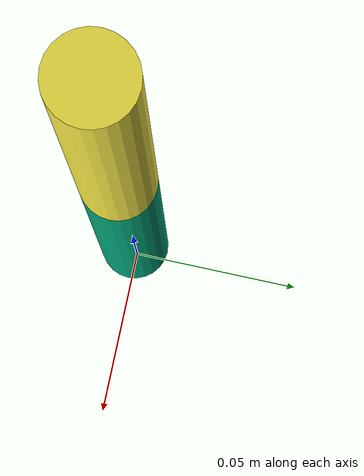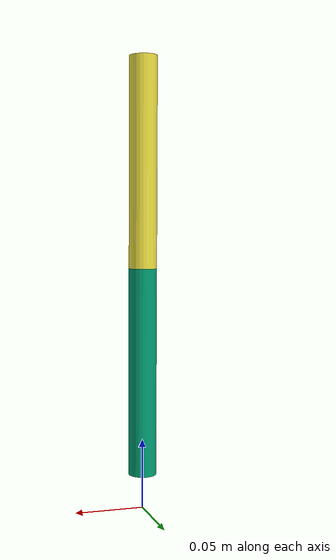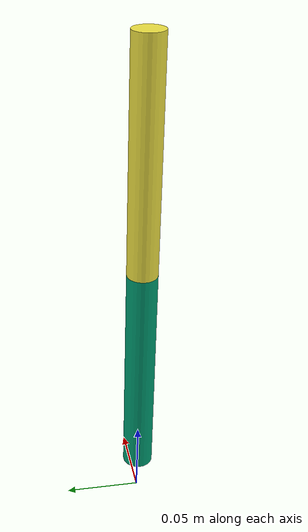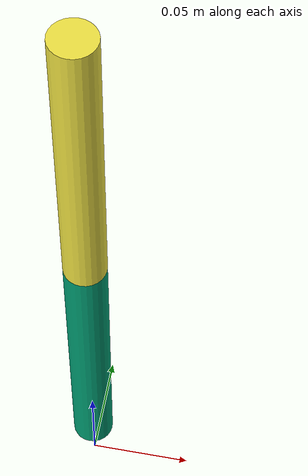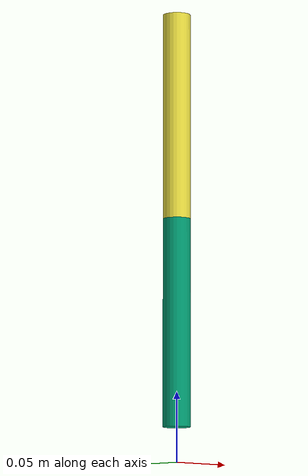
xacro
<?xml version="1.0"?>
<robot name="4dof_arm">

  <!-- Base link -->
  <link name="base_link"/>

  <!-- Shoulder -->
  <joint name="joint1_base" type="revolute">
    <parent link="base_link"/>
    <child  link="shoulder_link"/>
    <origin xyz="0 0 0.10" rpy="0 0 0"/>
    <axis xyz="0 0 1"/> <!-- rotates around Z -->
    <limit lower="-3.14" upper="3.14" effort="5" velocity="2"/>
  </joint>

  <link name="shoulder_link"/>

  <!-- Upper arm -->
  <joint name="joint2_shoulder" type="revolute">
    <parent link="shoulder_link"/>
    <child  link="upperarm_link"/>
    <origin xyz="0 0 0" rpy="0 0 0"/>
    <axis xyz="0 1 0"/>
    <limit lower="-2.0" upper="2.0" effort="5" velocity="2"/>
  </joint>

  <link name="upperarm_link">
    <visual>
      <geometry><cylinder length="0.15" radius="0.01"/></geometry>
    </visual>
  </link>

  <!-- Forearm -->
  <joint name="joint3_elbow" type="revolute">
    <parent link="upperarm_link"/>
    <child  link="forearm_link"/>
    <origin xyz="0 0 0.15" rpy="0 0 0"/>
    <axis xyz="0 1 0"/>
    <limit lower="-2.0" upper="2.0" effort="5" velocity="2"/>
  </joint>

  <link name="forearm_link">
    <visual>
      <geometry><cylinder length="0.15" radius="0.01"/></geometry>
    </visual>
  </link>

  <!-- Wrist -->
  <joint name="joint4_wrist" type="revolute">
    <parent link="forearm_link"/>
    <child  link="wrist_link"/>
    <origin xyz="0 0 0.15" rpy="0 0 0"/>
    <axis xyz="0 1 0"/>
    <limit lower="-2.0" upper="2.0" effort="5" velocity="2"/>
  </joint>

  <link name="wrist_link"/>
</robot>
